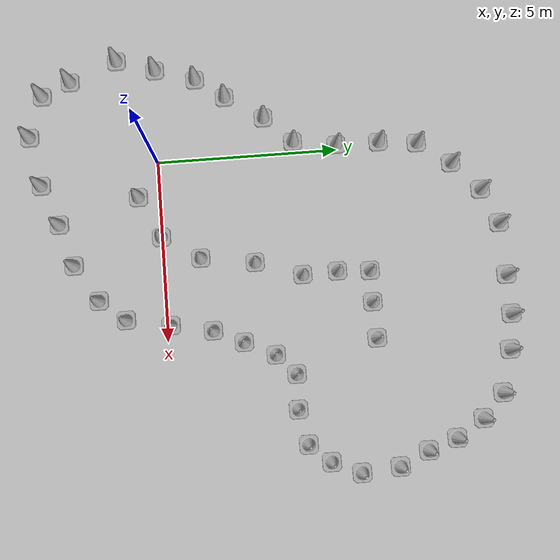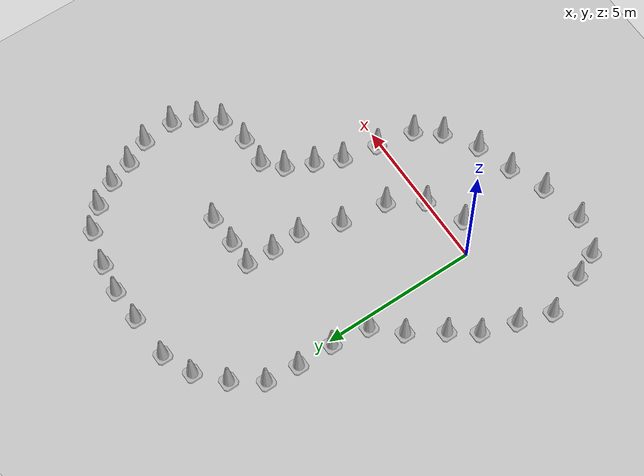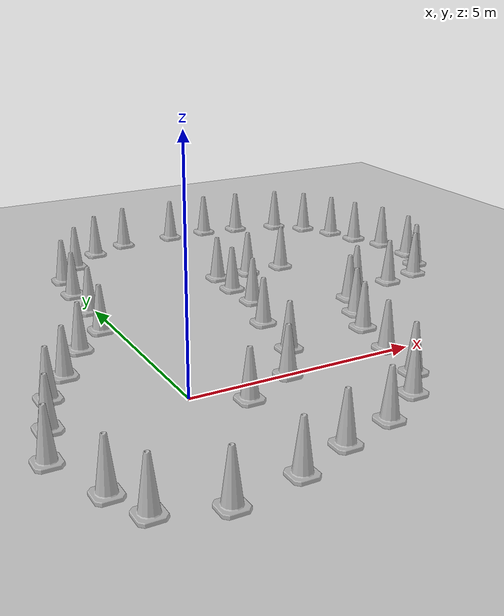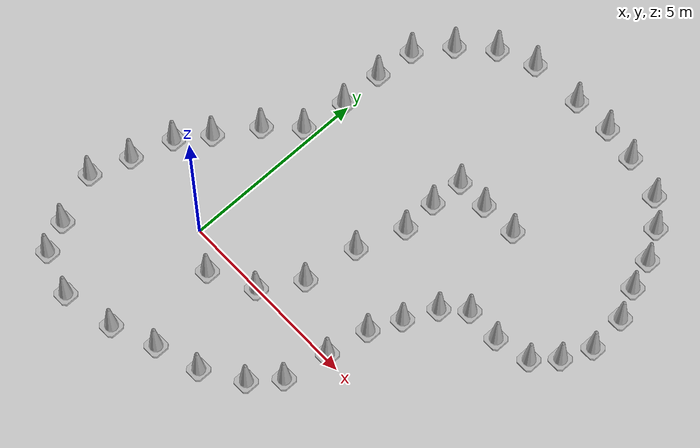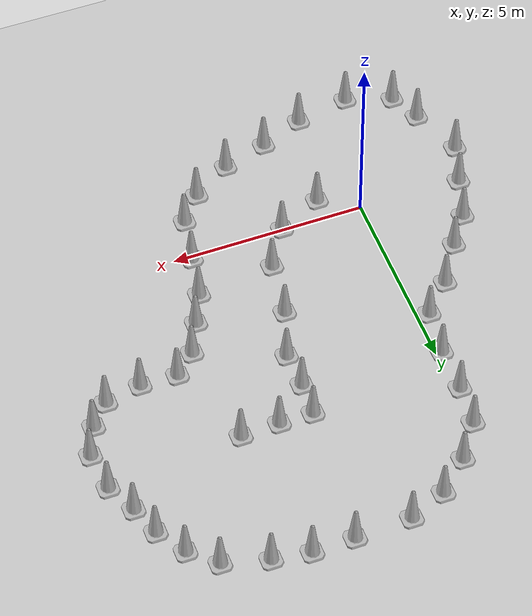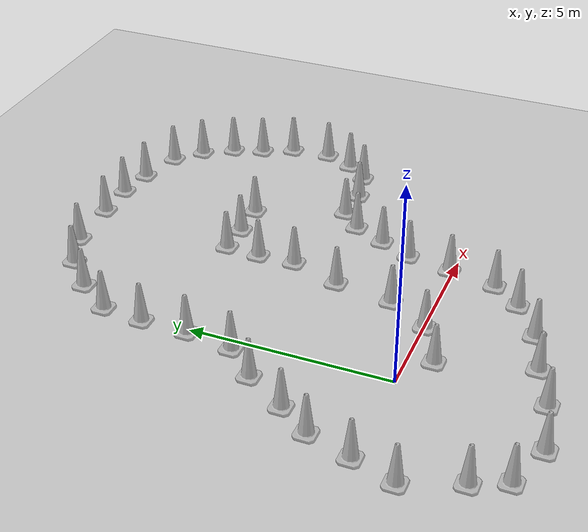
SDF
<sdf version="1.7">
 <world name="default">
  <light name="sun" type="directional">
   <pose>0 0 10 0 -0 0</pose>
   <diffuse>0.8 0.8 0.8 1</diffuse>
   <specular>0.2 0.2 0.2 1</specular>
   <attenuation>
    <range>1000</range>
    <constant>0.9</constant>
    <linear>0.01</linear>
    <quadratic>0.001</quadratic>
   </attenuation>
   <direction>-0.5 0.1 -0.9</direction>
   <spot><inner_angle>0</inner_angle><outer_angle>0</outer_angle><falloff>0</falloff></spot>
  </light>
  <model name="ground_plane">
   <static>1</static>
   <link name="link">
    <collision name="collision">
     <geometry><plane><normal>0 0 1</normal><size>100 100</size></plane></geometry>
     <surface>
      <contact><collide_bitmask>65535</collide_bitmask></contact>
      <friction><ode><mu>100</mu><mu2>50</mu2></ode></friction>
     </surface>
    </collision>
    <visual name="visual">
     <cast_shadows>0</cast_shadows>
     <geometry><plane><normal>0 0 1</normal><size>100 100</size></plane></geometry>
     <material>
      <script><uri>file://media/materials/scripts/gazebo.material</uri><name>Gazebo/Grey</name></script>
     </material>
    </visual>
   </link>
  </model>
  <gravity>0 0 -9.8</gravity>
  <magnetic_field>6e-06 2.3e-05 -4.2e-05</magnetic_field>
  <atmosphere type="adiabatic"/>
  <physics type="ode">
   <max_step_size>0.001</max_step_size>
   <real_time_factor>1</real_time_factor>
   <real_time_update_rate>1000</real_time_update_rate>
  </physics>
  <scene><ambient>0.4 0.4 0.4 1</ambient><background>0.7 0.7 0.7 1</background><shadows>1</shadows></scene>
  <spherical_coordinates>
   <surface_model>EARTH_WGS84</surface_model>
   <latitude_deg>0</latitude_deg>
   <longitude_deg>0</longitude_deg>
   <elevation>0</elevation>
   <heading_deg>0</heading_deg>
  </spherical_coordinates>
  <model name="Construction Cone">
   <link name="link">
    <collision name="collision">
     <geometry>
      <mesh><scale>10 10 10</scale><uri>model://construction_cone/meshes/construction_cone.dae</uri></mesh>
     </geometry>
    </collision>
    <visual name="visual">
     <geometry>
      <mesh><scale>10 10 10</scale><uri>model://construction_cone/meshes/construction_cone.dae</uri></mesh>
     </geometry>
    </visual>
    <inertial>
     <inertia><ixx>1</ixx><ixy>0</ixy><ixz>0</ixz><iyy>1</iyy><iyz>0</iyz><izz>1</izz></inertia>
     <mass>1</mass>
    </inertial>
   </link>
   <pose>0.955445 -0.592428 -3e-06 4e-06 -1e-06 0</pose>
  </model>
  <model name="Construction Cone_clone">
   <link name="link">
    <collision name="collision">
     <geometry>
      <mesh><scale>10 10 10</scale><uri>model://construction_cone/meshes/construction_cone.dae</uri></mesh>
     </geometry>
    </collision>
    <visual name="visual">
     <geometry>
      <mesh><scale>10 10 10</scale><uri>model://construction_cone/meshes/construction_cone.dae</uri></mesh>
     </geometry>
    </visual>
    <inertial>
     <inertia><ixx>1</ixx><ixy>0</ixy><ixz>0</ixz><iyy>1</iyy><iyz>0</iyz><izz>1</izz></inertia>
     <mass>1</mass>
    </inertial>
   </link>
   <pose>-1.05663 3.02048 -0 0 -1e-06 0</pose>
  </model>
  <model name="Construction Cone_clone_0">
   <link name="link">
    <collision name="collision">
     <geometry>
      <mesh><scale>10 10 10</scale><uri>model://construction_cone/meshes/construction_cone.dae</uri></mesh>
     </geometry>
    </collision>
    <visual name="visual">
     <geometry>
      <mesh><scale>10 10 10</scale><uri>model://construction_cone/meshes/construction_cone.dae</uri></mesh>
     </geometry>
    </visual>
    <inertial>
     <inertia><ixx>1</ixx><ixy>0</ixy><ixz>0</ixz><iyy>1</iyy><iyz>0</iyz><izz>1</izz></inertia>
     <mass>1</mass>
    </inertial>
   </link>
   <pose>2.11609 -0.018664 -0 0 -1e-06 0</pose>
  </model>
  <model name="Construction Cone_clone_1">
   <link name="link">
    <collision name="collision">
     <geometry>
      <mesh><scale>10 10 10</scale><uri>model://construction_cone/meshes/construction_cone.dae</uri></mesh>
     </geometry>
    </collision>
    <visual name="visual">
     <geometry>
      <mesh><scale>10 10 10</scale><uri>model://construction_cone/meshes/construction_cone.dae</uri></mesh>
     </geometry>
    </visual>
    <inertial>
     <inertia><ixx>1</ixx><ixy>0</ixy><ixz>0</ixz><iyy>1</iyy><iyz>0</iyz><izz>1</izz></inertia>
     <mass>1</mass>
    </inertial>
   </link>
   <pose>2.77371 1.02442 0 0 -0 0</pose>
  </model>
  <model name="Construction Cone_clone_2">
   <link name="link">
    <collision name="collision">
     <geometry>
      <mesh><scale>10 10 10</scale><uri>model://construction_cone/meshes/construction_cone.dae</uri></mesh>
     </geometry>
    </collision>
    <visual name="visual">
     <geometry>
      <mesh><scale>10 10 10</scale><uri>model://construction_cone/meshes/construction_cone.dae</uri></mesh>
     </geometry>
    </visual>
    <inertial>
     <inertia><ixx>1</ixx><ixy>0</ixy><ixz>0</ixz><iyy>1</iyy><iyz>0</iyz><izz>1</izz></inertia>
     <mass>1</mass>
    </inertial>
   </link>
   <pose>2.99761 2.50426 -0 0 -1e-06 0</pose>
  </model>
  <model name="Construction Cone_clone_3">
   <link name="link">
    <collision name="collision">
     <geometry>
      <mesh><scale>10 10 10</scale><uri>model://construction_cone/meshes/construction_cone.dae</uri></mesh>
     </geometry>
    </collision>
    <visual name="visual">
     <geometry>
      <mesh><scale>10 10 10</scale><uri>model://construction_cone/meshes/construction_cone.dae</uri></mesh>
     </geometry>
    </visual>
    <inertial>
     <inertia><ixx>1</ixx><ixy>0</ixy><ixz>0</ixz><iyy>1</iyy><iyz>0</iyz><izz>1</izz></inertia>
     <mass>1</mass>
    </inertial>
   </link>
   <pose>3.43208 3.78313 -0 0 -0 0</pose>
  </model>
  <model name="Construction Cone_clone_4">
   <link name="link">
    <collision name="collision">
     <geometry>
      <mesh><scale>10 10 10</scale><uri>model://construction_cone/meshes/construction_cone.dae</uri></mesh>
     </geometry>
    </collision>
    <visual name="visual">
     <geometry>
      <mesh><scale>10 10 10</scale><uri>model://construction_cone/meshes/construction_cone.dae</uri></mesh>
     </geometry>
    </visual>
    <inertial>
     <inertia><ixx>1</ixx><ixy>0</ixy><ixz>0</ixz><iyy>1</iyy><iyz>0</iyz><izz>1</izz></inertia>
     <mass>1</mass>
    </inertial>
   </link>
   <pose>3.45441 5.63003 -0 0 -1e-06 0</pose>
  </model>
  <model name="Construction Cone_clone_5">
   <link name="link">
    <collision name="collision">
     <geometry>
      <mesh><scale>10 10 10</scale><uri>model://construction_cone/meshes/construction_cone.dae</uri></mesh>
     </geometry>
    </collision>
    <visual name="visual">
     <geometry>
      <mesh><scale>10 10 10</scale><uri>model://construction_cone/meshes/construction_cone.dae</uri></mesh>
     </geometry>
    </visual>
    <inertial>
     <inertia><ixx>1</ixx><ixy>0</ixy><ixz>0</ixz><iyy>1</iyy><iyz>0</iyz><izz>1</izz></inertia>
     <mass>1</mass>
    </inertial>
   </link>
   <pose>-0.314809 3.79356 -9e-06 -5e-06 -0 -0</pose>
  </model>
  <model name="Construction Cone_clone_6">
   <link name="link">
    <collision name="collision">
     <geometry>
      <mesh><scale>10 10 10</scale><uri>model://construction_cone/meshes/construction_cone.dae</uri></mesh>
     </geometry>
    </collision>
    <visual name="visual">
     <geometry>
      <mesh><scale>10 10 10</scale><uri>model://construction_cone/meshes/construction_cone.dae</uri></mesh>
     </geometry>
    </visual>
    <inertial>
     <inertia><ixx>1</ixx><ixy>0</ixy><ixz>0</ixz><iyy>1</iyy><iyz>0</iyz><izz>1</izz></inertia>
     <mass>1</mass>
    </inertial>
   </link>
   <pose>-0.142961 4.99967 -0 0 -1e-06 0</pose>
  </model>
  <model name="Construction Cone_clone_7">
   <link name="link">
    <collision name="collision">
     <geometry>
      <mesh><scale>10 10 10</scale><uri>model://construction_cone/meshes/construction_cone.dae</uri></mesh>
     </geometry>
    </collision>
    <visual name="visual">
     <geometry>
      <mesh><scale>10 10 10</scale><uri>model://construction_cone/meshes/construction_cone.dae</uri></mesh>
     </geometry>
    </visual>
    <inertial>
     <inertia><ixx>1</ixx><ixy>0</ixy><ixz>0</ixz><iyy>1</iyy><iyz>0</iyz><izz>1</izz></inertia>
     <mass>1</mass>
    </inertial>
   </link>
   <pose>-0.131418 6.17718 -0 0 -1e-06 0</pose>
  </model>
  <model name="Construction Cone_clone_8">
   <link name="link">
    <collision name="collision">
     <geometry>
      <mesh><scale>10 10 10</scale><uri>model://construction_cone/meshes/construction_cone.dae</uri></mesh>
     </geometry>
    </collision>
    <visual name="visual">
     <geometry>
      <mesh><scale>10 10 10</scale><uri>model://construction_cone/meshes/construction_cone.dae</uri></mesh>
     </geometry>
    </visual>
    <inertial>
     <inertia><ixx>1</ixx><ixy>0</ixy><ixz>0</ixz><iyy>1</iyy><iyz>0</iyz><izz>1</izz></inertia>
     <mass>1</mass>
    </inertial>
   </link>
   <pose>-0.025159 7.24101 -0 0 -1e-06 0</pose>
  </model>
  <model name="Construction Cone_clone_9">
   <link name="link">
    <collision name="collision">
     <geometry>
      <mesh><scale>10 10 10</scale><uri>model://construction_cone/meshes/construction_cone.dae</uri></mesh>
     </geometry>
    </collision>
    <visual name="visual">
     <geometry>
      <mesh><scale>10 10 10</scale><uri>model://construction_cone/meshes/construction_cone.dae</uri></mesh>
     </geometry>
    </visual>
    <inertial>
     <inertia><ixx>1</ixx><ixy>0</ixy><ixz>0</ixz><iyy>1</iyy><iyz>0</iyz><izz>1</izz></inertia>
     <mass>1</mass>
    </inertial>
   </link>
   <pose>0.612831 8.14299 -8e-06 0 1e-06 0</pose>
  </model>
  <model name="Construction Cone_clone_10">
   <link name="link">
    <collision name="collision">
     <geometry>
      <mesh><scale>10 10 10</scale><uri>model://construction_cone/meshes/construction_cone.dae</uri></mesh>
     </geometry>
    </collision>
    <visual name="visual">
     <geometry>
      <mesh><scale>10 10 10</scale><uri>model://construction_cone/meshes/construction_cone.dae</uri></mesh>
     </geometry>
    </visual>
    <inertial>
     <inertia><ixx>1</ixx><ixy>0</ixy><ixz>0</ixz><iyy>1</iyy><iyz>0</iyz><izz>1</izz></inertia>
     <mass>1</mass>
    </inertial>
   </link>
   <pose>1.41969 8.88378 -0 0 -1e-06 0</pose>
  </model>
  <model name="Construction Cone_clone_11">
   <link name="link">
    <collision name="collision">
     <geometry>
      <mesh><scale>10 10 10</scale><uri>model://construction_cone/meshes/construction_cone.dae</uri></mesh>
     </geometry>
    </collision>
    <visual name="visual">
     <geometry>
      <mesh><scale>10 10 10</scale><uri>model://construction_cone/meshes/construction_cone.dae</uri></mesh>
     </geometry>
    </visual>
    <inertial>
     <inertia><ixx>1</ixx><ixy>0</ixy><ixz>0</ixz><iyy>1</iyy><iyz>0</iyz><izz>1</izz></inertia>
     <mass>1</mass>
    </inertial>
   </link>
   <pose>2.38916 9.2949 0 -0 -0 -0</pose>
  </model>
  <model name="Construction Cone_clone_12">
   <link name="link">
    <collision name="collision">
     <geometry>
      <mesh><scale>10 10 10</scale><uri>model://construction_cone/meshes/construction_cone.dae</uri></mesh>
     </geometry>
    </collision>
    <visual name="visual">
     <geometry>
      <mesh><scale>10 10 10</scale><uri>model://construction_cone/meshes/construction_cone.dae</uri></mesh>
     </geometry>
    </visual>
    <inertial>
     <inertia><ixx>1</ixx><ixy>0</ixy><ixz>0</ixz><iyy>1</iyy><iyz>0</iyz><izz>1</izz></inertia>
     <mass>1</mass>
    </inertial>
   </link>
   <pose>3.83569 9.34754 -0 0 -1e-06 0</pose>
  </model>
  <model name="Construction Cone_clone_13">
   <link name="link">
    <collision name="collision">
     <geometry>
      <mesh><scale>10 10 10</scale><uri>model://construction_cone/meshes/construction_cone.dae</uri></mesh>
     </geometry>
    </collision>
    <visual name="visual">
     <geometry>
      <mesh><scale>10 10 10</scale><uri>model://construction_cone/meshes/construction_cone.dae</uri></mesh>
     </geometry>
    </visual>
    <inertial>
     <inertia><ixx>1</ixx><ixy>0</ixy><ixz>0</ixz><iyy>1</iyy><iyz>0</iyz><izz>1</izz></inertia>
     <mass>1</mass>
    </inertial>
   </link>
   <pose>4.91218 9.36907 0 -0 -0 -0</pose>
  </model>
  <model name="Construction Cone_clone_14">
   <link name="link">
    <collision name="collision">
     <geometry>
      <mesh><scale>10 10 10</scale><uri>model://construction_cone/meshes/construction_cone.dae</uri></mesh>
     </geometry>
    </collision>
    <visual name="visual">
     <geometry>
      <mesh><scale>10 10 10</scale><uri>model://construction_cone/meshes/construction_cone.dae</uri></mesh>
     </geometry>
    </visual>
    <inertial>
     <inertia><ixx>1</ixx><ixy>0</ixy><ixz>0</ixz><iyy>1</iyy><iyz>0</iyz><izz>1</izz></inertia>
     <mass>1</mass>
    </inertial>
   </link>
   <pose>4.31631 5.62898 -0 0 -1e-06 0</pose>
  </model>
  <model name="Construction Cone_clone_15">
   <link name="link">
    <collision name="collision">
     <geometry>
      <mesh><scale>10 10 10</scale><uri>model://construction_cone/meshes/construction_cone.dae</uri></mesh>
     </geometry>
    </collision>
    <visual name="visual">
     <geometry>
      <mesh><scale>10 10 10</scale><uri>model://construction_cone/meshes/construction_cone.dae</uri></mesh>
     </geometry>
    </visual>
    <inertial>
     <inertia><ixx>1</ixx><ixy>0</ixy><ixz>0</ixz><iyy>1</iyy><iyz>0</iyz><izz>1</izz></inertia>
     <mass>1</mass>
    </inertial>
   </link>
   <pose>5.30468 5.66076 0 -0 -0 -0</pose>
  </model>
  <model name="Construction Cone_clone_16">
   <link name="link">
    <collision name="collision">
     <geometry>
      <mesh><scale>10 10 10</scale><uri>model://construction_cone/meshes/construction_cone.dae</uri></mesh>
     </geometry>
    </collision>
    <visual name="visual">
     <geometry>
      <mesh><scale>10 10 10</scale><uri>model://construction_cone/meshes/construction_cone.dae</uri></mesh>
     </geometry>
    </visual>
    <inertial>
     <inertia><ixx>1</ixx><ixy>0</ixy><ixz>0</ixz><iyy>1</iyy><iyz>0</iyz><izz>1</izz></inertia>
     <mass>1</mass>
    </inertial>
   </link>
   <pose>5.87505 9.22477 -0 0 -1e-06 0</pose>
  </model>
  <model name="Construction Cone_clone_17">
   <link name="link">
    <collision name="collision">
     <geometry>
      <mesh><scale>10 10 10</scale><uri>model://construction_cone/meshes/construction_cone.dae</uri></mesh>
     </geometry>
    </collision>
    <visual name="visual">
     <geometry>
      <mesh><scale>10 10 10</scale><uri>model://construction_cone/meshes/construction_cone.dae</uri></mesh>
     </geometry>
    </visual>
    <inertial>
     <inertia><ixx>1</ixx><ixy>0</ixy><ixz>0</ixz><iyy>1</iyy><iyz>0</iyz><izz>1</izz></inertia>
     <mass>1</mass>
    </inertial>
   </link>
   <pose>7.01393 8.91388 -0 0 -1e-06 0</pose>
  </model>
  <model name="Construction Cone_clone_18">
   <link name="link">
    <collision name="collision">
     <geometry>
      <mesh><scale>10 10 10</scale><uri>model://construction_cone/meshes/construction_cone.dae</uri></mesh>
     </geometry>
    </collision>
    <visual name="visual">
     <geometry>
      <mesh><scale>10 10 10</scale><uri>model://construction_cone/meshes/construction_cone.dae</uri></mesh>
     </geometry>
    </visual>
    <inertial>
     <inertia><ixx>1</ixx><ixy>0</ixy><ixz>0</ixz><iyy>1</iyy><iyz>0</iyz><izz>1</izz></inertia>
     <mass>1</mass>
    </inertial>
   </link>
   <pose>7.65385 8.31928 -0 0 -0 0</pose>
  </model>
  <model name="Construction Cone_clone_19">
   <link name="link">
    <collision name="collision">
     <geometry>
      <mesh><scale>10 10 10</scale><uri>model://construction_cone/meshes/construction_cone.dae</uri></mesh>
     </geometry>
    </collision>
    <visual name="visual">
     <geometry>
      <mesh><scale>10 10 10</scale><uri>model://construction_cone/meshes/construction_cone.dae</uri></mesh>
     </geometry>
    </visual>
    <inertial>
     <inertia><ixx>1</ixx><ixy>0</ixy><ixz>0</ixz><iyy>1</iyy><iyz>0</iyz><izz>1</izz></inertia>
     <mass>1</mass>
    </inertial>
   </link>
   <pose>8.11899 7.55992 0 -0 -0 -0</pose>
  </model>
  <model name="Construction Cone_clone_20">
   <link name="link">
    <collision name="collision">
     <geometry>
      <mesh><scale>10 10 10</scale><uri>model://construction_cone/meshes/construction_cone.dae</uri></mesh>
     </geometry>
    </collision>
    <visual name="visual">
     <geometry>
      <mesh><scale>10 10 10</scale><uri>model://construction_cone/meshes/construction_cone.dae</uri></mesh>
     </geometry>
    </visual>
    <inertial>
     <inertia><ixx>1</ixx><ixy>0</ixy><ixz>0</ixz><iyy>1</iyy><iyz>0</iyz><izz>1</izz></inertia>
     <mass>1</mass>
    </inertial>
   </link>
   <pose>8.38841 6.76963 -0 -0 -0 -0</pose>
  </model>
  <model name="Construction Cone_clone_21">
   <link name="link">
    <collision name="collision">
     <geometry>
      <mesh><scale>10 10 10</scale><uri>model://construction_cone/meshes/construction_cone.dae</uri></mesh>
     </geometry>
    </collision>
    <visual name="visual">
     <geometry>
      <mesh><scale>10 10 10</scale><uri>model://construction_cone/meshes/construction_cone.dae</uri></mesh>
     </geometry>
    </visual>
    <inertial>
     <inertia><ixx>1</ixx><ixy>0</ixy><ixz>0</ixz><iyy>1</iyy><iyz>0</iyz><izz>1</izz></inertia>
     <mass>1</mass>
    </inertial>
   </link>
   <pose>8.75549 5.97619 -0 0 -1e-06 0</pose>
  </model>
  <model name="Construction Cone_clone_22">
   <link name="link">
    <collision name="collision">
     <geometry>
      <mesh><scale>10 10 10</scale><uri>model://construction_cone/meshes/construction_cone.dae</uri></mesh>
     </geometry>
    </collision>
    <visual name="visual">
     <geometry>
      <mesh><scale>10 10 10</scale><uri>model://construction_cone/meshes/construction_cone.dae</uri></mesh>
     </geometry>
    </visual>
    <inertial>
     <inertia><ixx>1</ixx><ixy>0</ixy><ixz>0</ixz><iyy>1</iyy><iyz>0</iyz><izz>1</izz></inertia>
     <mass>1</mass>
    </inertial>
   </link>
   <pose>8.84295 4.94145 0 -0 -0 -0</pose>
  </model>
  <model name="Construction Cone_clone_23">
   <link name="link">
    <collision name="collision">
     <geometry>
      <mesh><scale>10 10 10</scale><uri>model://construction_cone/meshes/construction_cone.dae</uri></mesh>
     </geometry>
    </collision>
    <visual name="visual">
     <geometry>
      <mesh><scale>10 10 10</scale><uri>model://construction_cone/meshes/construction_cone.dae</uri></mesh>
     </geometry>
    </visual>
    <inertial>
     <inertia><ixx>1</ixx><ixy>0</ixy><ixz>0</ixz><iyy>1</iyy><iyz>0</iyz><izz>1</izz></inertia>
     <mass>1</mass>
    </inertial>
   </link>
   <pose>8.50486 4.15967 -0 0 -1e-06 0</pose>
  </model>
  <model name="Construction Cone_clone_24">
   <link name="link">
    <collision name="collision">
     <geometry>
      <mesh><scale>10 10 10</scale><uri>model://construction_cone/meshes/construction_cone.dae</uri></mesh>
     </geometry>
    </collision>
    <visual name="visual">
     <geometry>
      <mesh><scale>10 10 10</scale><uri>model://construction_cone/meshes/construction_cone.dae</uri></mesh>
     </geometry>
    </visual>
    <inertial>
     <inertia><ixx>1</ixx><ixy>0</ixy><ixz>0</ixz><iyy>1</iyy><iyz>0</iyz><izz>1</izz></inertia>
     <mass>1</mass>
    </inertial>
   </link>
   <pose>8.00179 3.58279 -0 0 -1e-06 0</pose>
  </model>
  <model name="Construction Cone_clone_25">
   <link name="link">
    <collision name="collision">
     <geometry>
      <mesh><scale>10 10 10</scale><uri>model://construction_cone/meshes/construction_cone.dae</uri></mesh>
     </geometry>
    </collision>
    <visual name="visual">
     <geometry>
      <mesh><scale>10 10 10</scale><uri>model://construction_cone/meshes/construction_cone.dae</uri></mesh>
     </geometry>
    </visual>
    <inertial>
     <inertia><ixx>1</ixx><ixy>0</ixy><ixz>0</ixz><iyy>1</iyy><iyz>0</iyz><izz>1</izz></inertia>
     <mass>1</mass>
    </inertial>
   </link>
   <pose>7.05985 3.38172 1e-06 -3e-06 0 0</pose>
  </model>
  <model name="Construction Cone_clone_26">
   <link name="link">
    <collision name="collision">
     <geometry>
      <mesh><scale>10 10 10</scale><uri>model://construction_cone/meshes/construction_cone.dae</uri></mesh>
     </geometry>
    </collision>
    <visual name="visual">
     <geometry>
      <mesh><scale>10 10 10</scale><uri>model://construction_cone/meshes/construction_cone.dae</uri></mesh>
     </geometry>
    </visual>
    <inertial>
     <inertia><ixx>1</ixx><ixy>0</ixy><ixz>0</ixz><iyy>1</iyy><iyz>0</iyz><izz>1</izz></inertia>
     <mass>1</mass>
    </inertial>
   </link>
   <pose>6.11418 3.41016 -0 0 -0 0</pose>
  </model>
  <model name="Construction Cone_clone_27">
   <link name="link">
    <collision name="collision">
     <geometry>
      <mesh><scale>10 10 10</scale><uri>model://construction_cone/meshes/construction_cone.dae</uri></mesh>
     </geometry>
    </collision>
    <visual name="visual">
     <geometry>
      <mesh><scale>10 10 10</scale><uri>model://construction_cone/meshes/construction_cone.dae</uri></mesh>
     </geometry>
    </visual>
    <inertial>
     <inertia><ixx>1</ixx><ixy>0</ixy><ixz>0</ixz><iyy>1</iyy><iyz>0</iyz><izz>1</izz></inertia>
     <mass>1</mass>
    </inertial>
   </link>
   <pose>5.55462 2.89125 -0 0 -1e-06 0</pose>
  </model>
  <model name="Construction Cone_clone_28">
   <link name="link">
    <collision name="collision">
     <geometry>
      <mesh><scale>10 10 10</scale><uri>model://construction_cone/meshes/construction_cone.dae</uri></mesh>
     </geometry>
    </collision>
    <visual name="visual">
     <geometry>
      <mesh><scale>10 10 10</scale><uri>model://construction_cone/meshes/construction_cone.dae</uri></mesh>
     </geometry>
    </visual>
    <inertial>
     <inertia><ixx>1</ixx><ixy>0</ixy><ixz>0</ixz><iyy>1</iyy><iyz>0</iyz><izz>1</izz></inertia>
     <mass>1</mass>
    </inertial>
   </link>
   <pose>5.15513 2.05401 -0 -0 -0 -0</pose>
  </model>
  <model name="Construction Cone_clone_29">
   <link name="link">
    <collision name="collision">
     <geometry>
      <mesh><scale>10 10 10</scale><uri>model://construction_cone/meshes/construction_cone.dae</uri></mesh>
     </geometry>
    </collision>
    <visual name="visual">
     <geometry>
      <mesh><scale>10 10 10</scale><uri>model://construction_cone/meshes/construction_cone.dae</uri></mesh>
     </geometry>
    </visual>
    <inertial>
     <inertia><ixx>1</ixx><ixy>0</ixy><ixz>0</ixz><iyy>1</iyy><iyz>0</iyz><izz>1</izz></inertia>
     <mass>1</mass>
    </inertial>
   </link>
   <pose>4.78285 1.239 -0 0 -1e-06 0</pose>
  </model>
  <model name="Construction Cone_clone_30">
   <link name="link">
    <collision name="collision">
     <geometry>
      <mesh><scale>10 10 10</scale><uri>model://construction_cone/meshes/construction_cone.dae</uri></mesh>
     </geometry>
    </collision>
    <visual name="visual">
     <geometry>
      <mesh><scale>10 10 10</scale><uri>model://construction_cone/meshes/construction_cone.dae</uri></mesh>
     </geometry>
    </visual>
    <inertial>
     <inertia><ixx>1</ixx><ixy>0</ixy><ixz>0</ixz><iyy>1</iyy><iyz>0</iyz><izz>1</izz></inertia>
     <mass>1</mass>
    </inertial>
   </link>
   <pose>4.56307 0.099667 -0 0 -1e-06 0</pose>
  </model>
  <model name="Construction Cone_clone_31">
   <link name="link">
    <collision name="collision">
     <geometry>
      <mesh><scale>10 10 10</scale><uri>model://construction_cone/meshes/construction_cone.dae</uri></mesh>
     </geometry>
    </collision>
    <visual name="visual">
     <geometry>
      <mesh><scale>10 10 10</scale><uri>model://construction_cone/meshes/construction_cone.dae</uri></mesh>
     </geometry>
    </visual>
    <inertial>
     <inertia><ixx>1</ixx><ixy>0</ixy><ixz>0</ixz><iyy>1</iyy><iyz>0</iyz><izz>1</izz></inertia>
     <mass>1</mass>
    </inertial>
   </link>
   <pose>4.32635 -1.10342 -1e-05 0 -0 0</pose>
  </model>
  <model name="Construction Cone_clone_32">
   <link name="link">
    <collision name="collision">
     <geometry>
      <mesh><scale>10 10 10</scale><uri>model://construction_cone/meshes/construction_cone.dae</uri></mesh>
     </geometry>
    </collision>
    <visual name="visual">
     <geometry>
      <mesh><scale>10 10 10</scale><uri>model://construction_cone/meshes/construction_cone.dae</uri></mesh>
     </geometry>
    </visual>
    <inertial>
     <inertia><ixx>1</ixx><ixy>0</ixy><ixz>0</ixz><iyy>1</iyy><iyz>0</iyz><izz>1</izz></inertia>
     <mass>1</mass>
    </inertial>
   </link>
   <pose>3.74702 -1.81827 -0 0 -1e-06 0</pose>
  </model>
  <model name="Construction Cone_clone_33">
   <link name="link">
    <collision name="collision">
     <geometry>
      <mesh><scale>10 10 10</scale><uri>model://construction_cone/meshes/construction_cone.dae</uri></mesh>
     </geometry>
    </collision>
    <visual name="visual">
     <geometry>
      <mesh><scale>10 10 10</scale><uri>model://construction_cone/meshes/construction_cone.dae</uri></mesh>
     </geometry>
    </visual>
    <inertial>
     <inertia><ixx>1</ixx><ixy>0</ixy><ixz>0</ixz><iyy>1</iyy><iyz>0</iyz><izz>1</izz></inertia>
     <mass>1</mass>
    </inertial>
   </link>
   <pose>2.73308 -2.45765 1e-06 -1e-06 -2e-06 0</pose>
  </model>
  <model name="Construction Cone_clone_34">
   <link name="link">
    <collision name="collision">
     <geometry>
      <mesh><scale>10 10 10</scale><uri>model://construction_cone/meshes/construction_cone.dae</uri></mesh>
     </geometry>
    </collision>
    <visual name="visual">
     <geometry>
      <mesh><scale>10 10 10</scale><uri>model://construction_cone/meshes/construction_cone.dae</uri></mesh>
     </geometry>
    </visual>
    <inertial>
     <inertia><ixx>1</ixx><ixy>0</ixy><ixz>0</ixz><iyy>1</iyy><iyz>0</iyz><izz>1</izz></inertia>
     <mass>1</mass>
    </inertial>
   </link>
   <pose>1.5679 -2.81056 -0 0 -1e-06 0</pose>
  </model>
  <model name="Construction Cone_clone_35">
   <link name="link">
    <collision name="collision">
     <geometry>
      <mesh><scale>10 10 10</scale><uri>model://construction_cone/meshes/construction_cone.dae</uri></mesh>
     </geometry>
    </collision>
    <visual name="visual">
     <geometry>
      <mesh><scale>10 10 10</scale><uri>model://construction_cone/meshes/construction_cone.dae</uri></mesh>
     </geometry>
    </visual>
    <inertial>
     <inertia><ixx>1</ixx><ixy>0</ixy><ixz>0</ixz><iyy>1</iyy><iyz>0</iyz><izz>1</izz></inertia>
     <mass>1</mass>
    </inertial>
   </link>
   <pose>0.434839 -3.2636 -0 0 -1e-06 0</pose>
  </model>
  <model name="Construction Cone_clone_36">
   <link name="link">
    <collision name="collision">
     <geometry>
      <mesh><scale>10 10 10</scale><uri>model://construction_cone/meshes/construction_cone.dae</uri></mesh>
     </geometry>
    </collision>
    <visual name="visual">
     <geometry>
      <mesh><scale>10 10 10</scale><uri>model://construction_cone/meshes/construction_cone.dae</uri></mesh>
     </geometry>
    </visual>
    <inertial>
     <inertia><ixx>1</ixx><ixy>0</ixy><ixz>0</ixz><iyy>1</iyy><iyz>0</iyz><izz>1</izz></inertia>
     <mass>1</mass>
    </inertial>
   </link>
   <pose>-0.96144 -3.53304 -0 0 -1e-06 0</pose>
  </model>
  <model name="Construction Cone_clone_37">
   <link name="link">
    <collision name="collision">
     <geometry>
      <mesh><scale>10 10 10</scale><uri>model://construction_cone/meshes/construction_cone.dae</uri></mesh>
     </geometry>
    </collision>
    <visual name="visual">
     <geometry>
      <mesh><scale>10 10 10</scale><uri>model://construction_cone/meshes/construction_cone.dae</uri></mesh>
     </geometry>
    </visual>
    <inertial>
     <inertia><ixx>1</ixx><ixy>0</ixy><ixz>0</ixz><iyy>1</iyy><iyz>0</iyz><izz>1</izz></inertia>
     <mass>1</mass>
    </inertial>
   </link>
   <pose>-2.12123 -3.13272 -0 0 -1e-06 0</pose>
  </model>
  <model name="Construction Cone_clone_38">
   <link name="link">
    <collision name="collision">
     <geometry>
      <mesh><scale>10 10 10</scale><uri>model://construction_cone/meshes/construction_cone.dae</uri></mesh>
     </geometry>
    </collision>
    <visual name="visual">
     <geometry>
      <mesh><scale>10 10 10</scale><uri>model://construction_cone/meshes/construction_cone.dae</uri></mesh>
     </geometry>
    </visual>
    <inertial>
     <inertia><ixx>1</ixx><ixy>0</ixy><ixz>0</ixz><iyy>1</iyy><iyz>0</iyz><izz>1</izz></inertia>
     <mass>1</mass>
    </inertial>
   </link>
   <pose>-2.48007 -2.33379 -0 1e-06 -0 0</pose>
  </model>
  <model name="Construction Cone_clone_39">
   <link name="link">
    <collision name="collision">
     <geometry>
      <mesh><scale>10 10 10</scale><uri>model://construction_cone/meshes/construction_cone.dae</uri></mesh>
     </geometry>
    </collision>
    <visual name="visual">
     <geometry>
      <mesh><scale>10 10 10</scale><uri>model://construction_cone/meshes/construction_cone.dae</uri></mesh>
     </geometry>
    </visual>
    <inertial>
     <inertia><ixx>1</ixx><ixy>0</ixy><ixz>0</ixz><iyy>1</iyy><iyz>0</iyz><izz>1</izz></inertia>
     <mass>1</mass>
    </inertial>
   </link>
   <pose>-3 -1 0 -0 -0 -0</pose>
  </model>
  <model name="Construction Cone_clone_40">
   <link name="link">
    <collision name="collision">
     <geometry>
      <mesh><scale>10 10 10</scale><uri>model://construction_cone/meshes/construction_cone.dae</uri></mesh>
     </geometry>
    </collision>
    <visual name="visual">
     <geometry>
      <mesh><scale>10 10 10</scale><uri>model://construction_cone/meshes/construction_cone.dae</uri></mesh>
     </geometry>
    </visual>
    <inertial>
     <inertia><ixx>1</ixx><ixy>0</ixy><ixz>0</ixz><iyy>1</iyy><iyz>0</iyz><izz>1</izz></inertia>
     <mass>1</mass>
    </inertial>
   </link>
   <pose>-2.65149 0.067252 0 -0 -0 -0</pose>
  </model>
  <model name="Construction Cone_clone_41">
   <link name="link">
    <collision name="collision">
     <geometry>
      <mesh><scale>10 10 10</scale><uri>model://construction_cone/meshes/construction_cone.dae</uri></mesh>
     </geometry>
    </collision>
    <visual name="visual">
     <geometry>
      <mesh><scale>10 10 10</scale><uri>model://construction_cone/meshes/construction_cone.dae</uri></mesh>
     </geometry>
    </visual>
    <inertial>
     <inertia><ixx>1</ixx><ixy>0</ixy><ixz>0</ixz><iyy>1</iyy><iyz>0</iyz><izz>1</izz></inertia>
     <mass>1</mass>
    </inertial>
   </link>
   <pose>-2.3003 1.17711 -0 0 -1e-06 0</pose>
  </model>
  <model name="Construction Cone_clone_42">
   <link name="link">
    <collision name="collision">
     <geometry>
      <mesh><scale>10 10 10</scale><uri>model://construction_cone/meshes/construction_cone.dae</uri></mesh>
     </geometry>
    </collision>
    <visual name="visual">
     <geometry>
      <mesh><scale>10 10 10</scale><uri>model://construction_cone/meshes/construction_cone.dae</uri></mesh>
     </geometry>
    </visual>
    <inertial>
     <inertia><ixx>1</ixx><ixy>0</ixy><ixz>0</ixz><iyy>1</iyy><iyz>0</iyz><izz>1</izz></inertia>
     <mass>1</mass>
    </inertial>
   </link>
   <pose>-1.73064 1.97457 0 -0 -0 -0</pose>
  </model>
  <model name="Construction Cone_clone_43">
   <link name="link">
    <collision name="collision">
     <geometry>
      <mesh><scale>10 10 10</scale><uri>model://construction_cone/meshes/construction_cone.dae</uri></mesh>
     </geometry>
    </collision>
    <visual name="visual">
     <geometry>
      <mesh><scale>10 10 10</scale><uri>model://construction_cone/meshes/construction_cone.dae</uri></mesh>
     </geometry>
    </visual>
    <inertial>
     <inertia><ixx>1</ixx><ixy>0</ixy><ixz>0</ixz><iyy>1</iyy><iyz>0</iyz><izz>1</izz></inertia>
     <mass>1</mass>
    </inertial>
   </link>
   <pose>3.4015 4.73965 -3e-06 4e-06 -1e-06 0</pose>
  </model>
 </world>
</sdf>
